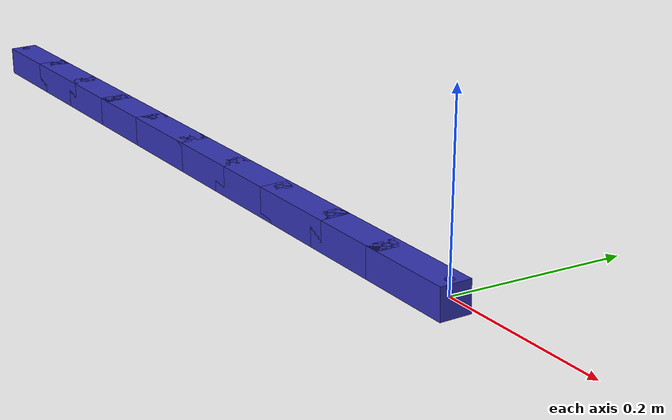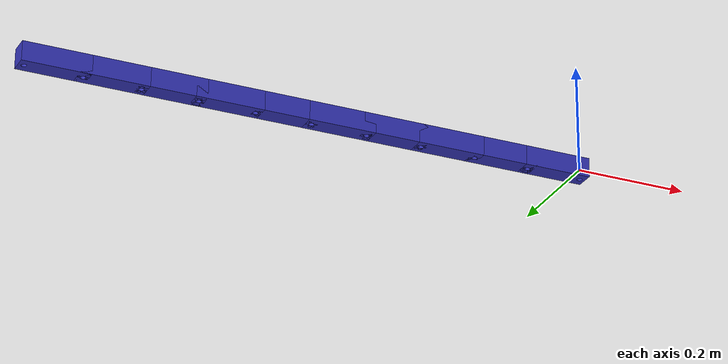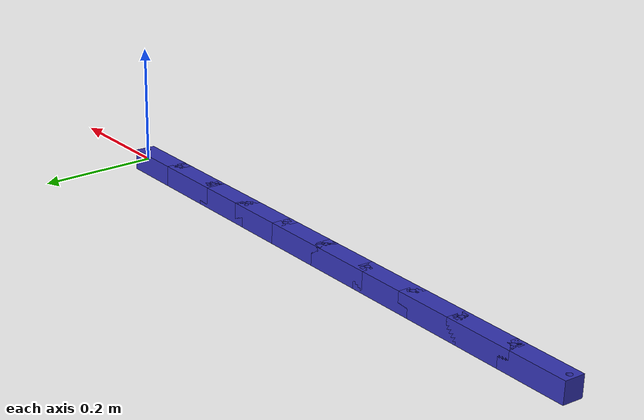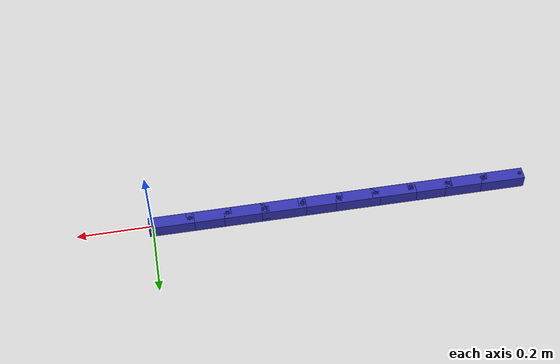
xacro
<?xml version="1.0" encoding="utf-8"?>
<robot name="Snake">

  <gazebo>
    <plugin filename="ign_gazebo-physics-system" name="ignition::gazebo::systems::Physics">
    </plugin>
  </gazebo>

  <!-- Global Material Definition -->
  <material name="blue">
    <color rgba="0.2 0.2 0.7 1.0" />
  </material>

  <!-- Link 1 -->
  <link name="link_1">
    <inertial>
      <origin xyz="0 0 0" rpy="1.6 0 0" />
      <mass value="1.0" />
      <inertia ixx="0.00003" ixy="0" ixz="0" iyy="0.0002" iyz="0" izz="0.0002" />
    </inertial>
    <visual>
      <origin xyz="0 0 0" rpy="1.6 0 0" />
      <geometry>
        <mesh filename="package://snake_description/meshes/link_1.stl" />
      </geometry>
      <material name="blue" />
    </visual>
    <collision>
      <origin xyz="0 0 0" rpy="1.6 0 0" />
      <geometry>
        <mesh filename="package://snake_description/meshes/link_1.stl" />
      </geometry>
    </collision>
  </link>

  <!-- Link 2 -->
  <link name="link_2">
    <inertial>
      <origin xyz="0 0 0" rpy="1.6 0 0" />
      <mass value="1.0" />
      <inertia ixx="0.00003" ixy="0" ixz="0" iyy="0.0002" iyz="0" izz="0.0002" />
    </inertial>
    <visual>
      <origin xyz="0 0 0" rpy="1.6 0 0" />
      <geometry>
        <mesh filename="package://snake_description/meshes/link_2.stl" />
      </geometry>
      <material name="blue" />
    </visual>
    <collision>
      <origin xyz="0 0 0" rpy="1.6 0 0" />
      <geometry>
        <mesh filename="package://snake_description/meshes/link_2.stl" />
      </geometry>
    </collision>
  </link>

  <!-- Joint 12 -->
  <joint name="joint_12" type="revolute">
    <origin xyz="0 0 0" rpy="0 0 0" />
    <parent link="link_1" />
    <child link="link_2" />
    <axis xyz="0 0 1" />
    <limit lower="-3.14159" upper="3.14159" effort="10.0" velocity="1.0" />
    <dynamics damping="0.5" friction="0.1" />
  </joint>

  <!-- Link 3 -->
  <link name="link_3">
    <inertial>
      <origin xyz="0 0 0" rpy="1.6 0 0" />
      <mass value="1.0" />
      <inertia ixx="0.00003" ixy="0" ixz="0" iyy="0.0002" iyz="0" izz="0.0002" />
    </inertial>
    <visual>
      <origin xyz="0 0 0" rpy="1.6 0 0" />
      <geometry>
        <mesh filename="package://snake_description/meshes/link_3.stl" />
      </geometry>
      <material name="blue" />
    </visual>
    <collision>
      <origin xyz="0 0 0" rpy="1.6 0 0" />
      <geometry>
        <mesh filename="package://snake_description/meshes/link_3.stl" />
      </geometry>
    </collision>
  </link>

  <!-- Joint 23 -->
  <joint name="joint_23" type="revolute">
    <origin xyz="0 0 0" rpy="0 0 0" />
    <parent link="link_2" />
    <child link="link_3" />
    <axis xyz="0 0 1" />
    <limit lower="-3.14159" upper="3.14159" effort="10.0" velocity="1.0" />
    <dynamics damping="0.5" friction="0.1" />
  </joint>

  <!-- Link 4 -->
  <link name="link_4">
    <inertial>
      <origin xyz="0 0 0" rpy="1.6 0 0" />
      <mass value="1.0" />
      <inertia ixx="0.00003" ixy="0" ixz="0" iyy="0.0002" iyz="0" izz="0.0002" />
    </inertial>
    <visual>
      <origin xyz="0 0 0" rpy="1.6 0 0" />
      <geometry>
        <mesh filename="package://snake_description/meshes/link_4.stl" />
      </geometry>
      <material name="blue" />
    </visual>
    <collision>
      <origin xyz="0 0 0" rpy="1.6 0 0" />
      <geometry>
        <mesh filename="package://snake_description/meshes/link_4.stl" />
      </geometry>
    </collision>
  </link>

  <!-- Joint 34 -->
  <joint name="joint_34" type="revolute">
    <origin xyz="0 0 0" rpy="0 0 0" />
    <parent link="link_3" />
    <child link="link_4" />
    <axis xyz="0 0 1" />
    <limit lower="-3.14159" upper="3.14159" effort="10.0" velocity="1.0" />
    <dynamics damping="0.5" friction="0.1" />
  </joint>

  <!-- Link 5 -->
  <link name="link_5">
    <inertial>
      <origin xyz="0 0 0" rpy="1.6 0 0" />
      <mass value="1.0" />
      <inertia ixx="0.00003" ixy="0" ixz="0" iyy="0.0002" iyz="0" izz="0.0002" />
    </inertial>
    <visual>
      <origin xyz="0 0 0" rpy="1.6 0 0" />
      <geometry>
        <mesh filename="package://snake_description/meshes/link_5.stl" />
      </geometry>
      <material name="blue" />
    </visual>
    <collision>
      <origin xyz="0 0 0" rpy="1.6 0 0" />
      <geometry>
        <mesh filename="package://snake_description/meshes/link_5.stl" />
      </geometry>
    </collision>
  </link>

  <!-- Joint 45 -->
  <joint name="joint_45" type="revolute">
    <origin xyz="0 0 0" rpy="0 0 0" />
    <parent link="link_4" />
    <child link="link_5" />
    <axis xyz="0 0 1" />
    <limit lower="-3.14159" upper="3.14159" effort="10.0" velocity="1.0" />
    <dynamics damping="0.5" friction="0.1" />
  </joint>

  <!-- Link 6 -->
  <link name="link_6">
    <inertial>
      <origin xyz="0 0 0" rpy="1.6 0 0" />
      <mass value="1.0" />
      <inertia ixx="0.00003" ixy="0" ixz="0" iyy="0.0002" iyz="0" izz="0.0002" />
    </inertial>
    <visual>
      <origin xyz="0 0 0" rpy="1.6 0 0" />
      <geometry>
        <mesh filename="package://snake_description/meshes/link_6.stl" />
      </geometry>
      <material name="blue" />
    </visual>
    <collision>
      <origin xyz="0 0 0" rpy="1.6 0 0" />
      <geometry>
        <mesh filename="package://snake_description/meshes/link_6.stl" />
      </geometry>
    </collision>
  </link>

  <!-- Joint 56 -->
  <joint name="joint_56" type="revolute">
    <origin xyz="0 0 0" rpy="0 0 0" />
    <parent link="link_5" />
    <child link="link_6" />
    <axis xyz="0 0 1" />
    <limit lower="-3.14159" upper="3.14159" effort="10.0" velocity="1.0" />
    <dynamics damping="0.5" friction="0.1" />
  </joint>

  <!-- Link 7 -->
  <link name="link_7">
    <inertial>
      <origin xyz="0 0 0" rpy="1.6 0 0" />
      <mass value="1.0" />
      <inertia ixx="0.00003" ixy="0" ixz="0" iyy="0.0002" iyz="0" izz="0.0002" />
    </inertial>
    <visual>
      <origin xyz="0 0 0" rpy="1.6 0 0" />
      <geometry>
        <mesh filename="package://snake_description/meshes/link_7.stl" />
      </geometry>
      <material name="blue" />
    </visual>
    <collision>
      <origin xyz="0 0 0" rpy="1.6 0 0" />
      <geometry>
        <mesh filename="package://snake_description/meshes/link_7.stl" />
      </geometry>
    </collision>
  </link>

  <!-- Joint 67 -->
  <joint name="joint_67" type="revolute">
    <origin xyz="0 0 0" rpy="0 0 0" />
    <parent link="link_6" />
    <child link="link_7" />
    <axis xyz="0 0 1" />
    <limit lower="-3.14159" upper="3.14159" effort="10.0" velocity="1.0" />
    <dynamics damping="0.5" friction="0.1" />
  </joint>

  <!-- Link 8 -->
  <link name="link_8">
    <inertial>
      <origin xyz="0 0 0" rpy="1.6 0 0" />
      <mass value="1.0" />
      <inertia ixx="0.00003" ixy="0" ixz="0" iyy="0.0002" iyz="0" izz="0.0002" />
    </inertial>
    <visual>
      <origin xyz="0 0 0" rpy="1.6 0 0" />
      <geometry>
        <mesh filename="package://snake_description/meshes/link_8.stl" />
      </geometry>
      <material name="blue" />
    </visual>
    <collision>
      <origin xyz="0 0 0" rpy="1.6 0 0" />
      <geometry>
        <mesh filename="package://snake_description/meshes/link_8.stl" />
      </geometry>
    </collision>
  </link>

  <!-- Joint 78 -->
  <joint name="joint_78" type="revolute">
    <origin xyz="0 0 0" rpy="0 0 0" />
    <parent link="link_7" />
    <child link="link_8" />
    <axis xyz="0 0 1" />
    <limit lower="-3.14159" upper="3.14159" effort="10.0" velocity="1.0" />
    <dynamics damping="0.5" friction="0.1" />
  </joint>

  <!-- Link 9 -->
  <link name="link_9">
    <inertial>
      <origin xyz="0 0 0" rpy="1.6 0 0" />
      <mass value="1.0" />
      <inertia ixx="0.00003" ixy="0" ixz="0" iyy="0.0002" iyz="0" izz="0.0002" />
    </inertial>
    <visual>
      <origin xyz="0 0 0" rpy="1.6 0 0" />
      <geometry>
        <mesh filename="package://snake_description/meshes/link_9.stl" />
      </geometry>
      <material name="blue" />
    </visual>
    <collision>
      <origin xyz="0 0 0" rpy="1.6 0 0" />
      <geometry>
        <mesh filename="package://snake_description/meshes/link_9.stl" />
      </geometry>
    </collision>
  </link>

  <!-- Joint 89 -->
  <joint name="joint_89" type="revolute">
    <origin xyz="0 0 0" rpy="0 0 0" />
    <parent link="link_8" />
    <child link="link_9" />
    <axis xyz="0 0 1" />
    <limit lower="-3.14159" upper="3.14159" effort="10.0" velocity="1.0" />
    <dynamics damping="0.5" friction="0.1" />
  </joint>

  <!-- Link 10 -->
  <link name="link_10">
    <inertial>
      <origin xyz="0 0 0" rpy="1.6 0 0" />
      <mass value="1.0" />
      <inertia ixx="0.00003" ixy="0" ixz="0" iyy="0.0002" iyz="0" izz="0.0002" />
    </inertial>
    <visual>
      <origin xyz="0 0 0" rpy="1.6 0 0" />
      <geometry>
        <mesh filename="package://snake_description/meshes/link_10.stl" />
      </geometry>
      <material name="blue" />
    </visual>
    <collision>
      <origin xyz="0 0 0" rpy="1.6 0 0" />
      <geometry>
        <mesh filename="package://snake_description/meshes/link_10.stl" />
      </geometry>
    </collision>
  </link>

  <!-- Joint 910 -->
  <joint name="joint_910" type="revolute">
    <origin xyz="0 0 0" rpy="0 0 0" />
    <parent link="link_9" />
    <child link="link_10" />
    <axis xyz="0 0 1" />
    <limit lower="-3.14159" upper="3.14159" effort="10.0" velocity="1.0" />
    <dynamics damping="0.5" friction="0.1" />
  </joint>

  <!-- ==================== GAZEBO FRICTION & PHYSICS STABILITY ==================== -->
  <gazebo reference="link_1">
    <surface><friction><ode><mu>0.12</mu><mu2>0.4</mu2><fdir1>1 0 0</fdir1><slip1>0.02</slip1><slip2>0.05</slip2></ode></friction></surface>
    <self_collide>false</self_collide>
  </gazebo>
  <gazebo reference="link_2">
    <surface><friction><ode><mu>0.12</mu><mu2>0.4</mu2><fdir1>1 0 0</fdir1><slip1>0.02</slip1><slip2>0.05</slip2></ode></friction></surface>
    <self_collide>false</self_collide>
  </gazebo>
  <gazebo reference="link_3">
    <surface><friction><ode><mu>0.12</mu><mu2>0.4</mu2><fdir1>1 0 0</fdir1><slip1>0.02</slip1><slip2>0.05</slip2></ode></friction></surface>
    <self_collide>false</self_collide>
  </gazebo>
  <gazebo reference="link_4">
    <surface><friction><ode><mu>0.12</mu><mu2>0.4</mu2><fdir1>1 0 0</fdir1><slip1>0.02</slip1><slip2>0.05</slip2></ode></friction></surface>
    <self_collide>false</self_collide>
  </gazebo>
  <gazebo reference="link_5">
    <surface><friction><ode><mu>0.12</mu><mu2>0.4</mu2><fdir1>1 0 0</fdir1><slip1>0.02</slip1><slip2>0.05</slip2></ode></friction></surface>
    <self_collide>false</self_collide>
  </gazebo>
  <gazebo reference="link_6">
    <surface><friction><ode><mu>0.12</mu><mu2>0.4</mu2><fdir1>1 0 0</fdir1><slip1>0.02</slip1><slip2>0.05</slip2></ode></friction></surface>
    <self_collide>false</self_collide>
  </gazebo>
  <gazebo reference="link_7">
    <surface><friction><ode><mu>0.12</mu><mu2>0.4</mu2><fdir1>1 0 0</fdir1><slip1>0.02</slip1><slip2>0.05</slip2></ode></friction></surface>
    <self_collide>false</self_collide>
  </gazebo>
  <gazebo reference="link_8">
    <surface><friction><ode><mu>0.12</mu><mu2>0.4</mu2><fdir1>1 0 0</fdir1><slip1>0.02</slip1><slip2>0.05</slip2></ode></friction></surface>
    <self_collide>false</self_collide>
  </gazebo>
  <gazebo reference="link_9">
    <surface><friction><ode><mu>0.12</mu><mu2>0.4</mu2><fdir1>1 0 0</fdir1><slip1>0.02</slip1><slip2>0.05</slip2></ode></friction></surface>
    <self_collide>false</self_collide>
  </gazebo>
  <gazebo reference="link_10">
    <surface><friction><ode><mu>0.12</mu><mu2>0.4</mu2><fdir1>1 0 0</fdir1><slip1>0.02</slip1><slip2>0.05</slip2></ode></friction></surface>
    <self_collide>false</self_collide>
  </gazebo>

</robot>
